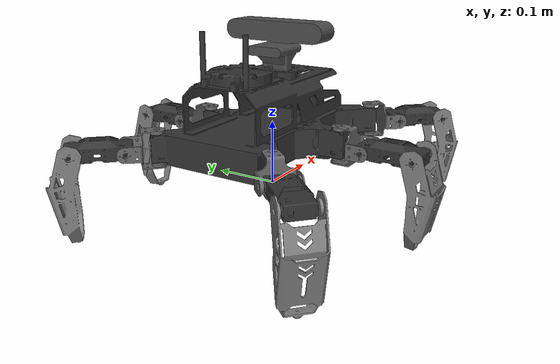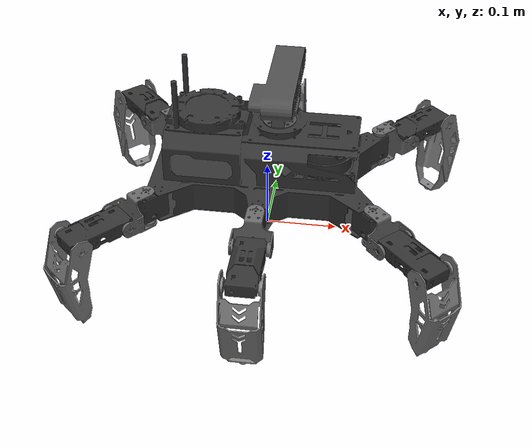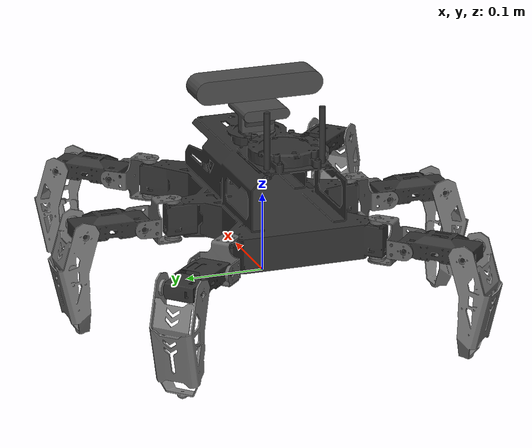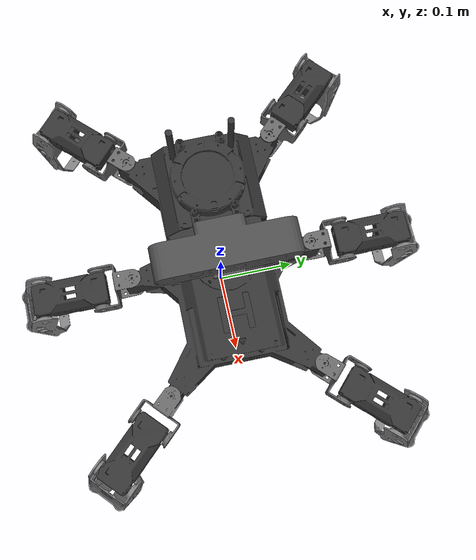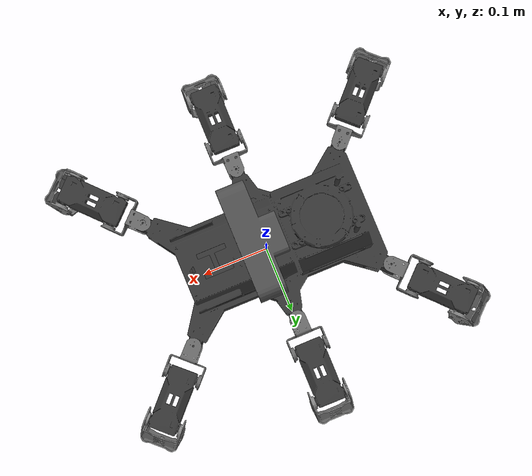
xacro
<?xml version="1.0"?>

<robot xmlns:xacro="http://www.ros.org/wiki/xacro" name="rospider">
    <xacro:arg name="prefix" default="" />

    <!-- Import rospider macro -->
    <xacro:include filename="$(find rospider_description)/urdf/rospider_description.urdf.xacro" />

    <!-- Import Rviz colors -->
    <xacro:include filename="$(find rospider_description)/gazebo/rospider.materials.xacro" />

    <!-- Import rospider ros_control description -->
    <xacro:include filename="$(find rospider_description)/gazebo/rospider.gazebo.xacro" />
    <xacro:include filename="$(find rospider_description)/gazebo/rospider.transmission.xacro" />

    <!-- Used for fixing robot -->
    <link name="$(arg prefix)base_link"/>
    <gazebo reference="$(arg prefix)base_footprint">
        <static>true</static>
    </gazebo>

    <xacro:rospider parent="$(arg prefix)base_link" prefix="$(arg prefix)">
        <origin xyz="0 0 0.06" rpy="0 0 0" />
    </xacro:rospider>

    <xacro:rospider_gazebo prefix="$(arg prefix)"></xacro:rospider_gazebo>
    <xacro:rospider_gazeboo_transmission prefix="$(arg prefix)"> </xacro:rospider_gazeboo_transmission>

</robot>

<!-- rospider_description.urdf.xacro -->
<robot xmlns:xacro="http://ros.org/wiki/xacro">
    <!-- parameters -->
    <xacro:property name="my_pi" value="3.1415926535897931"/>
    <xacro:property name="coxa_z"        value="0.02190000000"/>
    <xacro:property name="coxa_length"   value="0.04455000"/>
    <xacro:property name="femur_length"  value="0.07516779190"/>
    <xacro:property name="tibia_length"  value="0.12913312503"/>

    <!-- Joint properties -->
    <xacro:property name="joint_lower_limit" value="-${3.14}" />
    <xacro:property name="joint_upper_limit" value="${3.14}" />
    <xacro:property name="joint_effort" value="6.0" />
    <xacro:property name="joint_velocity" value="0.524" />

    <!-- Leg macro -->
    <xacro:macro name="leg" params="prefix side position x y angle axis">
        <!-- leg position -->
        <!-- coxa -->
        <joint name="${prefix}coxa_joint_${side}${position}" type="revolute">
	    <origin xyz="${x} ${y} ${coxa_z}" rpy="0.0 0.0 ${angle}" />
            <parent link="${prefix}body_link" />
            <child link="${prefix}coxa_${side}${position}" />
            <axis xyz="0.0 0.0 1.0" />
            <limit lower="${joint_lower_limit}" upper="${joint_upper_limit}" effort="${joint_effort}" velocity="${joint_velocity}" />
	    <dynamics damping="0.7" />
        </joint>
        <link name="${prefix}coxa_${side}${position}">
            <visual>
                <origin xyz="0.0 0.0 0.0" rpy="0.0 0.0 0.0"/>
                <geometry>
			<mesh filename="package://rospider_description/meshes/coxa_${side}.stl" scale="1.0 1.0 1.0"/>
                </geometry>
                <material name="">
                    <color rgba="0.4 0.4 0.4 1" />
                </material>
            </visual>
            <collision>
                <origin xyz="0.0 0.0 0.0" rpy="0.0 0.0 0.0" />
                <geometry>
			<mesh filename="package://rospider_description/meshes/coxa_${side}.stl" scale="1.0 1.0 1.0"/>
                </geometry>
            </collision>
            <inertial>
                <origin xyz="0.0 0.0 0.0" rpy="0.0 0.0 0.0" />
                <mass value="0.00001"/>
                <inertia ixx="1.0" ixy="0.0" ixz="0.0" iyy="1.0" iyz="0.0" izz="1.0" />
            </inertial>
        </link>
        <!-- femur -->
        <joint name="${prefix}femur_joint_${side}${position}" type="revolute">
		<origin xyz="${coxa_length} 0.0 0.0" rpy="${axis*my_pi/2} 0.0 0.0" />
            <parent link="${prefix}coxa_${side}${position}" />
            <child link="${prefix}femur_${side}${position}" />
            <axis xyz="0.0 0.0 ${axis}" />
            <limit lower="${joint_lower_limit}" upper="${joint_upper_limit}" effort="${joint_effort}" velocity="${joint_velocity}" />
	    <dynamics damping="0.7" />
        </joint>
        <link name="${prefix}femur_${side}${position}">
            <visual>
                <origin xyz="0.0 0.0 0.0" rpy="0.0 0.0 0.0"/>
                <geometry>
			<mesh filename="package://rospider_description/meshes/femur_${side}.stl" scale="1.0 1.0 1.0"/>
                </geometry>
                <material name="">
                    <color rgba="0.2 0.2 0.2 1" />
                </material>
            </visual>
            <collision>
                <origin xyz="0.0 0.0 0.0" rpy="0.0 0.0 0" />
                <geometry>
			<mesh filename="package://rospider_description/meshes/femur_${side}.stl" scale="1.0 1.0 1.0"/>
                </geometry>
                <material name="">
                    <color rgba="0.2 0.2 0.2 1" />
                </material>
            </collision>
            <inertial>
                <origin xyz="0.0 0.0 0.0" rpy="0.0 0.0 1.0" />
                <mass value="0.00001"/>
                <inertia ixx="1.0" ixy="0.0" ixz="0.0" iyy="1.0" iyz="0.0" izz="1.0" />
            </inertial>
        </link>

        <!-- tibia -->
        <joint name="${prefix}tibia_joint_${side}${position}" type="revolute">
	    <origin xyz="${femur_length} 0.0 0.0" rpy="0.0 0.0 ${-axis*(my_pi/2)}" />
            <parent link="${prefix}femur_${side}${position}" />
            <child link="${prefix}tibia_${side}${position}" />
            <axis xyz="0.0 0.0 ${axis}" />
            <limit lower="${joint_lower_limit}" upper="${joint_upper_limit}" effort="${joint_effort}" velocity="${joint_velocity}" />
	    <dynamics damping="0.7" />
        </joint>
        <link name="${prefix}tibia_${side}${position}">
            <visual>
		<origin xyz="0.0 0.0 0.0" rpy="0.0 0.0 0.0"/>
                <geometry>
			<mesh filename="package://rospider_description/meshes/tibia_${side}.stl" scale="1.0 1.0 1.0"/>
                </geometry>
                <material name="">
                    <color rgba="0.5 0.5 0.5 1" />
                </material>
            </visual>
            <collision>
		<origin xyz="0.0 0.0 0.0" rpy="0.0 0.0 0.0"/>
                <geometry>
			<mesh filename="package://rospider_description/meshes/tibia_${side}.stl" scale="1.0 1.0 1.0"/>
                </geometry>
            </collision>
            <inertial>
                <origin xyz="0.0 0.0 0.0" rpy="0.0 0.0 0.0" />
                <mass value="0.00001"/>
                <inertia ixx="1.0" ixy="0.0" ixz="0.0" iyy="1.0" iyz="0.0" izz="1.0" />
            </inertial>
        </link>

        <!-- ENDPOINT -->
        <joint name="${prefix}end_joint${side}${position}" type="fixed">
	    <origin xyz="${tibia_length} 0.0 0.0" rpy="0.0 0.0 0.0"/>
            <parent link="${prefix}tibia_${side}${position}" />
            <child link="${prefix}endpoint_${side}${position}" />
            <axis xyz="0.0 0.0 0.0" />
        </joint>
        <link name="${prefix}endpoint_${side}${position}">
        </link>
    </xacro:macro>

    <xacro:macro name="rospider" params="prefix parent *origin">
        <joint name="${prefix}base_joint" type="fixed">
            <parent link="${parent}"/>
            <child link="${prefix}body_link" />
            <xacro:insert_block name="origin"/>
        </joint>
        <link name="${prefix}body_link">
            <visual>
	        <origin xyz="0.0 0.0 0.0" rpy="0.0 0.0 0.0" />
                <geometry>
			<mesh filename="package://rospider_description/meshes/body.stl" scale="1 1 1"/>
                </geometry>
                <material name="">
                    <color rgba="0.2 0.2 0.2 1" />
                </material>
            </visual>
            <collision>
		<origin xyz="0.0 0.0 0.0" rpy="0.0 0.0 0.0"/>
                <geometry>
			<mesh filename="package://rospider_description/meshes/body.stl" scale="1 1 1"/>
                </geometry>
            </collision>
            <inertial>
                <origin xyz="0.0 0.0 0.0" rpy="0.0 0.0 0.0" />
                <mass value="0.00001"/>
                <inertia ixx="1.0" ixy="0.0" ixz="0.0" iyy="1.0" iyz="0.0" izz="1.0" />
            </inertial>
        </link>
	<joint name="${prefix}lidar_base_joint" type="fixed">
            <parent link="${prefix}body_link"/>
            <child link="${prefix}lidar_base_link"/>
            <origin xyz="0.07970422634 0.00180336342 0.05389289402" rpy="0.0 0.0 0.0"/>
        </joint>

	<link name="${prefix}lidar_base_link">
		<visual>
			<origin xyz="0.0 0.0 0.0" rpy="0.0 0.0 0.0" />
			<geometry>
				<mesh filename="package://rospider_description/meshes/lidar_a2.stl" scale="1.0 1.0 1.0"/>
			</geometry>
			<material name="">
                    		<color rgba="0.2 0.2 0.2 1" />
			</material>
		</visual>
		<collision>
			<origin xyz="0.0 0.0 0.0" rpy="0.0 0.0 0.0" />
			<geometry>
				<mesh filename="package://rospider_description/meshes/lidar_a2.stl" scale="1.0 1.0 1.0"/>
			</geometry>
			<material name="">
                    		<color rgba="0.2 0.2 0.2 1" />
			</material>
		</collision>
		<inertial>
			<origin xyz="0.0 0.0 0.0" rpy="0.0 0.0 0.0" />
			<mass value="0.00001"/>
			<inertia ixx="1.0" ixy="0.0" ixz="0.0" iyy="1.0" iyz="0.0" izz="1.0" />
		</inertial>
	</link>

        <!-- Depth camera properties -->
        <joint name="${prefix}camera_base_joint" type="revolute">
            <parent link="${prefix}body_link"/>
            <child link="${prefix}camera_base_link"/>
            <origin xyz="0.01637579035 0.00180788035 0.11927289569" rpy="0.0 0.0 0.0"/>
            <limit lower="-2.1" upper="2.1" effort="${joint_effort}" velocity="${joint_velocity}" />
            <axis xyz="0.0 0.0 1.0" />
        </joint>
        <link name="${prefix}camera_base_link">
		<visual>
			<origin xyz="0.0 0.0 0.0" rpy="0.0 0.0 0.0" />
			<geometry>
				<mesh filename="package://rospider_description/meshes/astrapro.stl" scale="1.0 1.0 1.0"/>
			</geometry>
			<material name="">
				<color rgba="0.3 0.3 0.3 1" />
			</material>
		</visual>
		<collision>
			<origin xyz="0.0 0.0 0.0" rpy="0.0 0.0 0.0" />
			<geometry>
				<mesh filename="package://rospider_description/meshes/astrapro.stl" scale="1.0 1.0 1.0"/>
			</geometry>
			<material name="">
				<color rgba="0.3 0.3 0.3 1"/>
			</material>
		</collision>
		<inertial>
			<origin xyz="0.0 0.0 0.0" rpy="0.0 0.0 0.0" />
			<mass value="0.00001"/>
			<inertia ixx="1.0" ixy="0.0" ixz="0.0" iyy="1.0" iyz="0.0" izz="1.0" />
		</inertial>
	</link>

	<xacro:leg prefix="${prefix}" side="R" position="F" x="0.152747935790" y="-0.09349910970" angle="${-46.64489909/180*my_pi}"      axis="-1" />
	<xacro:leg prefix="${prefix}" side="R" position="M" x="-0.00029797781" y="-0.11415782485" angle="${-my_pi/2}"                    axis="-1" />
	<xacro:leg prefix="${prefix}" side="R" position="R" x="-0.15274793579" y="-0.09349910970" angle="${46.64489909/180*my_pi+my_pi}" axis="-1" />

	<xacro:leg prefix="${prefix}" side="L" position="F" x="0.152747937160" y="0.097105835240" angle="${46.64489909/180*my_pi}"       axis="1"/>
	<xacro:leg prefix="${prefix}" side="L" position="M" x="-0.00029797781" y="0.117764551690" angle="${my_pi/2}"                     axis="1"/>
	<xacro:leg prefix="${prefix}" side="L" position="R" x="-0.15334332732" y="0.097105835240" angle="${-46.64489909/180*my_pi-my_pi}"       axis="1"/>
    </xacro:macro>
</robot>
